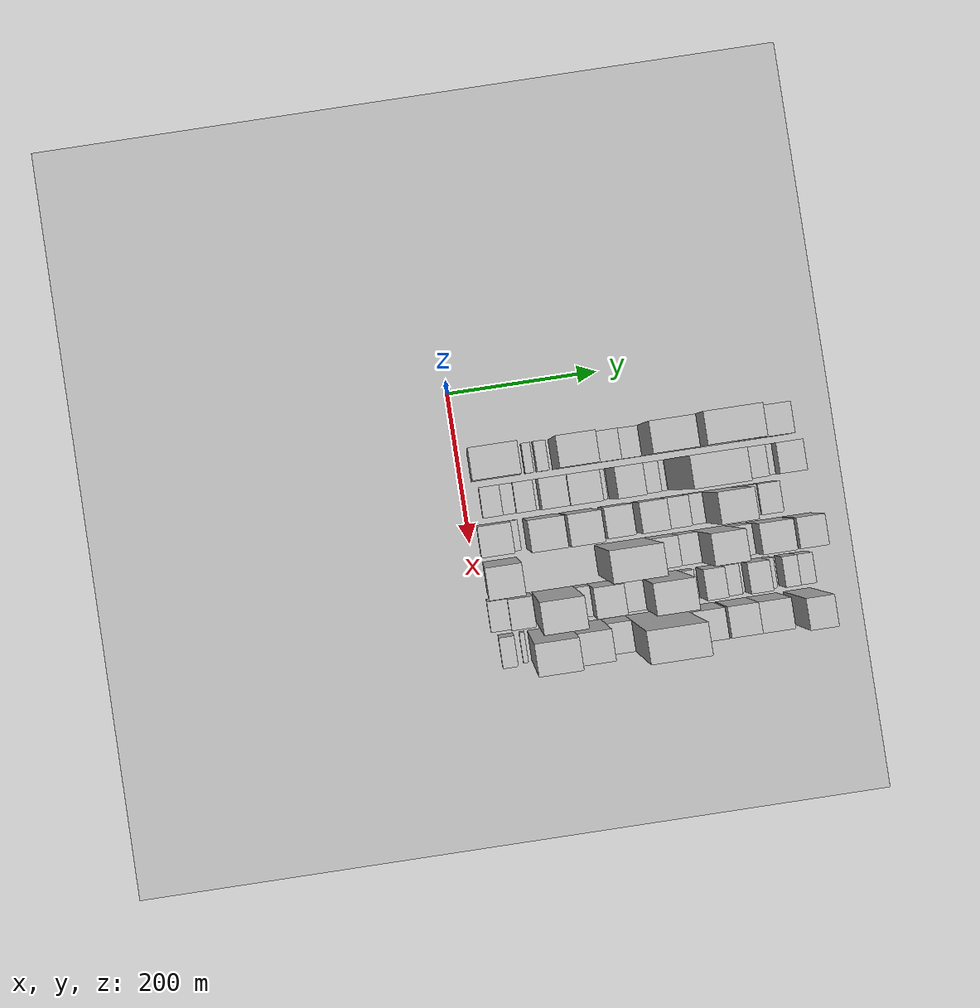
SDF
<sdf version="1.6">
 <world name="default">
  <include><name>ground_plane_1</name><uri>model://HANNAS_ground_plane</uri></include>
  <include>
   <name>ground_plane_2</name>
   <uri>model://HANNAS_ground_plane</uri>
   <pose>100 0 0  0 0 0</pose>
  </include>
  <model name="building_22">
   <static>1</static>
   <pose>100.0000 43.3936 0 0.000000 0.000000 0.000000</pose>
   <link name="link">
    <pose>0 0 82.50 0 0 0</pose>
    <collision name="collision"><geometry><box><size>40.0000 59.7189 165.0000</size></box></geometry></collision>
    <visual name="visual">
     <cast_shadows>0</cast_shadows>
     <geometry><box><size>40.0000 59.7189 165.0000</size></box></geometry>
     <material>
      <script>
       <uri>model://HANNAS_wall/materials/scripts</uri>
       <uri>model://HANNAS_wall/materials/textures</uri>
       <name>vrc/HANNAS_wall</name>
      </script>
     </material>
    </visual>
   </link>
  </model>
  <model name="building_23">
   <static>1</static>
   <pose>100.0000 76.6870 0 0.000000 0.000000 0.000000</pose>
   <link name="link">
    <pose>0 0 7.50 0 0 0</pose>
    <collision name="collision"><geometry><box><size>40.0000 6.8679 15.0000</size></box></geometry></collision>
    <visual name="visual">
     <cast_shadows>0</cast_shadows>
     <geometry><box><size>40.0000 6.8679 15.0000</size></box></geometry>
     <material>
      <script>
       <uri>model://HANNAS_wall/materials/scripts</uri>
       <uri>model://HANNAS_wall/materials/textures</uri>
       <name>vrc/HANNAS_wall</name>
      </script>
     </material>
    </visual>
   </link>
  </model>
  <model name="building_24">
   <static>1</static>
   <pose>100.0000 90.9002 0 0.000000 0.000000 0.000000</pose>
   <link name="link">
    <pose>0 0 12.00 0 0 0</pose>
    <collision name="collision"><geometry><box><size>40.0000 11.5585 24.0000</size></box></geometry></collision>
    <visual name="visual">
     <cast_shadows>0</cast_shadows>
     <geometry><box><size>40.0000 11.5585 24.0000</size></box></geometry>
     <material>
      <script>
       <uri>model://HANNAS_wall/materials/scripts</uri>
       <uri>model://HANNAS_wall/materials/textures</uri>
       <name>vrc/HANNAS_wall</name>
      </script>
     </material>
    </visual>
   </link>
  </model>
  <model name="building_25">
   <static>1</static>
   <pose>100.0000 108.6364 0 0.000000 0.000000 0.000000</pose>
   <link name="link">
    <pose>0 0 15.00 0 0 0</pose>
    <collision name="collision"><geometry><box><size>40.0000 15.9138 30.0000</size></box></geometry></collision>
    <visual name="visual">
     <cast_shadows>0</cast_shadows>
     <geometry><box><size>40.0000 15.9138 30.0000</size></box></geometry>
     <material>
      <script>
       <uri>model://HANNAS_wall/materials/scripts</uri>
       <uri>model://HANNAS_wall/materials/textures</uri>
       <name>vrc/HANNAS_wall</name>
      </script>
     </material>
    </visual>
   </link>
  </model>
  <model name="building_26">
   <static>1</static>
   <pose>100.0000 147.6354 0 0.000000 0.000000 0.000000</pose>
   <link name="link">
    <pose>0 0 63.00 0 0 0</pose>
    <collision name="collision"><geometry><box><size>40.0000 50.0843 126.0000</size></box></geometry></collision>
    <visual name="visual">
     <cast_shadows>0</cast_shadows>
     <geometry><box><size>40.0000 50.0843 126.0000</size></box></geometry>
     <material>
      <script>
       <uri>model://HANNAS_wall/materials/scripts</uri>
       <uri>model://HANNAS_wall/materials/textures</uri>
       <name>vrc/HANNAS_wall</name>
      </script>
     </material>
    </visual>
   </link>
  </model>
  <model name="building_27">
   <static>1</static>
   <pose>100.0000 190.1945 0 0.000000 0.000000 0.000000</pose>
   <link name="link">
    <pose>0 0 31.50 0 0 0</pose>
    <collision name="collision"><geometry><box><size>40.0000 35.0339 63.0000</size></box></geometry></collision>
    <visual name="visual">
     <cast_shadows>0</cast_shadows>
     <geometry><box><size>40.0000 35.0339 63.0000</size></box></geometry>
     <material>
      <script>
       <uri>model://HANNAS_wall/materials/scripts</uri>
       <uri>model://HANNAS_wall/materials/textures</uri>
       <name>vrc/HANNAS_wall</name>
      </script>
     </material>
    </visual>
   </link>
  </model>
  <model name="building_28">
   <static>1</static>
   <pose>100.0000 221.5984 0 0.000000 0.000000 0.000000</pose>
   <link name="link">
    <pose>0 0 24.00 0 0 0</pose>
    <collision name="collision"><geometry><box><size>40.0000 27.7739 48.0000</size></box></geometry></collision>
    <visual name="visual">
     <cast_shadows>0</cast_shadows>
     <geometry><box><size>40.0000 27.7739 48.0000</size></box></geometry>
     <material>
      <script>
       <uri>model://HANNAS_wall/materials/scripts</uri>
       <uri>model://HANNAS_wall/materials/textures</uri>
       <name>vrc/HANNAS_wall</name>
      </script>
     </material>
    </visual>
   </link>
  </model>
  <model name="building_29">
   <static>1</static>
   <pose>100.0000 264.2516 0 0.000000 0.000000 0.000000</pose>
   <link name="link">
    <pose>0 0 73.50 0 0 0</pose>
    <collision name="collision"><geometry><box><size>40.0000 57.5324 147.0000</size></box></geometry></collision>
    <visual name="visual">
     <cast_shadows>0</cast_shadows>
     <geometry><box><size>40.0000 57.5324 147.0000</size></box></geometry>
     <material>
      <script>
       <uri>model://HANNAS_wall/materials/scripts</uri>
       <uri>model://HANNAS_wall/materials/textures</uri>
       <name>vrc/HANNAS_wall</name>
      </script>
     </material>
    </visual>
   </link>
  </model>
  <model name="building_30">
   <static>1</static>
   <pose>100.0000 328.5669 0 0.000000 0.000000 0.000000</pose>
   <link name="link">
    <pose>0 0 97.50 0 0 0</pose>
    <collision name="collision"><geometry><box><size>40.0000 71.0983 195.0000</size></box></geometry></collision>
    <visual name="visual">
     <cast_shadows>0</cast_shadows>
     <geometry><box><size>40.0000 71.0983 195.0000</size></box></geometry>
     <material>
      <script>
       <uri>model://HANNAS_wall/materials/scripts</uri>
       <uri>model://HANNAS_wall/materials/textures</uri>
       <name>vrc/HANNAS_wall</name>
      </script>
     </material>
    </visual>
   </link>
  </model>
  <model name="building_31">
   <static>1</static>
   <pose>100.0000 374.6300 0 0.000000 0.000000 0.000000</pose>
   <link name="link">
    <pose>0 0 19.50 0 0 0</pose>
    <collision name="collision"><geometry><box><size>40.0000 21.0278 39.0000</size></box></geometry></collision>
    <visual name="visual">
     <cast_shadows>0</cast_shadows>
     <geometry><box><size>40.0000 21.0278 39.0000</size></box></geometry>
     <material>
      <script>
       <uri>model://HANNAS_wall/materials/scripts</uri>
       <uri>model://HANNAS_wall/materials/textures</uri>
       <name>vrc/HANNAS_wall</name>
      </script>
     </material>
    </visual>
   </link>
  </model>
  <model name="building_32">
   <static>1</static>
   <pose>100.0000 404.0000 0 0.000000 0.000000 0.000000</pose>
   <link name="link">
    <pose>0 0 48.00 0 0 0</pose>
    <collision name="collision"><geometry><box><size>40.0000 37.7122 96.0000</size></box></geometry></collision>
    <visual name="visual">
     <cast_shadows>0</cast_shadows>
     <geometry><box><size>40.0000 37.7122 96.0000</size></box></geometry>
     <material>
      <script>
       <uri>model://HANNAS_wall/materials/scripts</uri>
       <uri>model://HANNAS_wall/materials/textures</uri>
       <name>vrc/HANNAS_wall</name>
      </script>
     </material>
    </visual>
   </link>
  </model>
  <model name="building_33">
   <static>1</static>
   <pose>100.0000 429.2658 0 0.000000 0.000000 0.000000</pose>
   <link name="link">
    <pose>0 0 13.50 0 0 0</pose>
    <collision name="collision"><geometry><box><size>40.0000 12.8195 27.0000</size></box></geometry></collision>
    <visual name="visual">
     <cast_shadows>0</cast_shadows>
     <geometry><box><size>40.0000 12.8195 27.0000</size></box></geometry>
     <material>
      <script>
       <uri>model://HANNAS_wall/materials/scripts</uri>
       <uri>model://HANNAS_wall/materials/textures</uri>
       <name>vrc/HANNAS_wall</name>
      </script>
     </material>
    </visual>
   </link>
  </model>
  <model name="building_69">
   <static>1</static>
   <pose>149.0000 34.6953 0 0.000000 0.000000 0.000000</pose>
   <link name="link">
    <pose>0 0 22.50 0 0 0</pose>
    <collision name="collision"><geometry><box><size>40.0000 26.3077 45.0000</size></box></geometry></collision>
    <visual name="visual">
     <cast_shadows>0</cast_shadows>
     <geometry><box><size>40.0000 26.3077 45.0000</size></box></geometry>
     <material>
      <script>
       <uri>model://HANNAS_wall/materials/scripts</uri>
       <uri>model://HANNAS_wall/materials/textures</uri>
       <name>vrc/HANNAS_wall</name>
      </script>
     </material>
    </visual>
   </link>
  </model>
  <model name="building_70">
   <static>1</static>
   <pose>149.0000 56.5618 0 0.000000 0.000000 0.000000</pose>
   <link name="link">
    <pose>0 0 15.00 0 0 0</pose>
    <collision name="collision"><geometry><box><size>40.0000 17.4253 30.0000</size></box></geometry></collision>
    <visual name="visual">
     <cast_shadows>0</cast_shadows>
     <geometry><box><size>40.0000 17.4253 30.0000</size></box></geometry>
     <material>
      <script>
       <uri>model://HANNAS_wall/materials/scripts</uri>
       <uri>model://HANNAS_wall/materials/textures</uri>
       <name>vrc/HANNAS_wall</name>
      </script>
     </material>
    </visual>
   </link>
  </model>
  <model name="building_71">
   <static>1</static>
   <pose>149.0000 78.2791 0 0.000000 0.000000 0.000000</pose>
   <link name="link">
    <pose>0 0 22.50 0 0 0</pose>
    <collision name="collision"><geometry><box><size>40.0000 26.0093 45.0000</size></box></geometry></collision>
    <visual name="visual">
     <cast_shadows>0</cast_shadows>
     <geometry><box><size>40.0000 26.0093 45.0000</size></box></geometry>
     <material>
      <script>
       <uri>model://HANNAS_wall/materials/scripts</uri>
       <uri>model://HANNAS_wall/materials/textures</uri>
       <name>vrc/HANNAS_wall</name>
      </script>
     </material>
    </visual>
   </link>
  </model>
  <model name="building_72">
   <static>1</static>
   <pose>149.0000 94.3080 0 0.000000 0.000000 0.000000</pose>
   <link name="link">
    <pose>0 0 7.50 0 0 0</pose>
    <collision name="collision"><geometry><box><size>40.0000 6.0483 15.0000</size></box></geometry></collision>
    <visual name="visual">
     <cast_shadows>0</cast_shadows>
     <geometry><box><size>40.0000 6.0483 15.0000</size></box></geometry>
     <material>
      <script>
       <uri>model://HANNAS_wall/materials/scripts</uri>
       <uri>model://HANNAS_wall/materials/textures</uri>
       <name>vrc/HANNAS_wall</name>
      </script>
     </material>
    </visual>
   </link>
  </model>
  <model name="building_73">
   <static>1</static>
   <pose>149.0000 115.4321 0 0.000000 0.000000 0.000000</pose>
   <link name="link">
    <pose>0 0 33.00 0 0 0</pose>
    <collision name="collision"><geometry><box><size>40.0000 36.2000 66.0000</size></box></geometry></collision>
    <visual name="visual">
     <cast_shadows>0</cast_shadows>
     <geometry><box><size>40.0000 36.2000 66.0000</size></box></geometry>
     <material>
      <script>
       <uri>model://HANNAS_wall/materials/scripts</uri>
       <uri>model://HANNAS_wall/materials/textures</uri>
       <name>vrc/HANNAS_wall</name>
      </script>
     </material>
    </visual>
   </link>
  </model>
  <model name="building_74">
   <static>1</static>
   <pose>149.0000 154.6363 0 0.000000 0.000000 0.000000</pose>
   <link name="link">
    <pose>0 0 37.50 0 0 0</pose>
    <collision name="collision"><geometry><box><size>40.0000 42.2082 75.0000</size></box></geometry></collision>
    <visual name="visual">
     <cast_shadows>0</cast_shadows>
     <geometry><box><size>40.0000 42.2082 75.0000</size></box></geometry>
     <material>
      <script>
       <uri>model://HANNAS_wall/materials/scripts</uri>
       <uri>model://HANNAS_wall/materials/textures</uri>
       <name>vrc/HANNAS_wall</name>
      </script>
     </material>
    </visual>
   </link>
  </model>
  <model name="building_75">
   <static>1</static>
   <pose>149.0000 181.4023 0 0.000000 0.000000 0.000000</pose>
   <link name="link">
    <pose>0 0 12.00 0 0 0</pose>
    <collision name="collision"><geometry><box><size>40.0000 11.3238 24.0000</size></box></geometry></collision>
    <visual name="visual">
     <cast_shadows>0</cast_shadows>
     <geometry><box><size>40.0000 11.3238 24.0000</size></box></geometry>
     <material>
      <script>
       <uri>model://HANNAS_wall/materials/scripts</uri>
       <uri>model://HANNAS_wall/materials/textures</uri>
       <name>vrc/HANNAS_wall</name>
      </script>
     </material>
    </visual>
   </link>
  </model>
  <model name="building_76">
   <static>1</static>
   <pose>149.0000 209.1817 0 0.000000 0.000000 0.000000</pose>
   <link name="link">
    <pose>0 0 51.00 0 0 0</pose>
    <collision name="collision"><geometry><box><size>40.0000 36.2350 102.0000</size></box></geometry></collision>
    <visual name="visual">
     <cast_shadows>0</cast_shadows>
     <geometry><box><size>40.0000 36.2350 102.0000</size></box></geometry>
     <material>
      <script>
       <uri>model://HANNAS_wall/materials/scripts</uri>
       <uri>model://HANNAS_wall/materials/textures</uri>
       <name>vrc/HANNAS_wall</name>
      </script>
     </material>
    </visual>
   </link>
  </model>
  <model name="building_77">
   <static>1</static>
   <pose>149.0000 240.6200 0 0.000000 0.000000 0.000000</pose>
   <link name="link">
    <pose>0 0 25.50 0 0 0</pose>
    <collision name="collision"><geometry><box><size>40.0000 26.6417 51.0000</size></box></geometry></collision>
    <visual name="visual">
     <cast_shadows>0</cast_shadows>
     <geometry><box><size>40.0000 26.6417 51.0000</size></box></geometry>
     <material>
      <script>
       <uri>model://HANNAS_wall/materials/scripts</uri>
       <uri>model://HANNAS_wall/materials/textures</uri>
       <name>vrc/HANNAS_wall</name>
      </script>
     </material>
    </visual>
   </link>
  </model>
  <model name="building_78">
   <static>1</static>
   <pose>149.0000 259.4497 0 0.000000 0.000000 0.000000</pose>
   <link name="link">
    <pose>0 0 13.50 0 0 0</pose>
    <collision name="collision"><geometry><box><size>40.0000 11.0177 27.0000</size></box></geometry></collision>
    <visual name="visual">
     <cast_shadows>0</cast_shadows>
     <geometry><box><size>40.0000 11.0177 27.0000</size></box></geometry>
     <material>
      <script>
       <uri>model://HANNAS_wall/materials/scripts</uri>
       <uri>model://HANNAS_wall/materials/textures</uri>
       <name>vrc/HANNAS_wall</name>
      </script>
     </material>
    </visual>
   </link>
  </model>
  <model name="building_79">
   <static>1</static>
   <pose>149.0000 304.3574 0 0.000000 0.000000 0.000000</pose>
   <link name="link">
    <pose>0 0 96.00 0 0 0</pose>
    <collision name="collision"><geometry><box><size>40.0000 68.7976 192.0000</size></box></geometry></collision>
    <visual name="visual">
     <cast_shadows>0</cast_shadows>
     <geometry><box><size>40.0000 68.7976 192.0000</size></box></geometry>
     <material>
      <script>
       <uri>model://HANNAS_wall/materials/scripts</uri>
       <uri>model://HANNAS_wall/materials/textures</uri>
       <name>vrc/HANNAS_wall</name>
      </script>
     </material>
    </visual>
   </link>
  </model>
  <model name="building_80">
   <static>1</static>
   <pose>149.0000 362.0281 0 0.000000 0.000000 0.000000</pose>
   <link name="link">
    <pose>0 0 43.50 0 0 0</pose>
    <collision name="collision"><geometry><box><size>40.0000 46.5438 87.0000</size></box></geometry></collision>
    <visual name="visual">
     <cast_shadows>0</cast_shadows>
     <geometry><box><size>40.0000 46.5438 87.0000</size></box></geometry>
     <material>
      <script>
       <uri>model://HANNAS_wall/materials/scripts</uri>
       <uri>model://HANNAS_wall/materials/textures</uri>
       <name>vrc/HANNAS_wall</name>
      </script>
     </material>
    </visual>
   </link>
  </model>
  <model name="building_81">
   <static>1</static>
   <pose>149.0000 395.4197 0 0.000000 0.000000 0.000000</pose>
   <link name="link">
    <pose>0 0 18.00 0 0 0</pose>
    <collision name="collision"><geometry><box><size>40.0000 20.2394 36.0000</size></box></geometry></collision>
    <visual name="visual">
     <cast_shadows>0</cast_shadows>
     <geometry><box><size>40.0000 20.2394 36.0000</size></box></geometry>
     <material>
      <script>
       <uri>model://HANNAS_wall/materials/scripts</uri>
       <uri>model://HANNAS_wall/materials/textures</uri>
       <name>vrc/HANNAS_wall</name>
      </script>
     </material>
    </visual>
   </link>
  </model>
  <model name="building_82">
   <static>1</static>
   <pose>149.0000 423.2424 0 0.000000 0.000000 0.000000</pose>
   <link name="link">
    <pose>0 0 30.00 0 0 0</pose>
    <collision name="collision"><geometry><box><size>40.0000 35.4060 60.0000</size></box></geometry></collision>
    <visual name="visual">
     <cast_shadows>0</cast_shadows>
     <geometry><box><size>40.0000 35.4060 60.0000</size></box></geometry>
     <material>
      <script>
       <uri>model://HANNAS_wall/materials/scripts</uri>
       <uri>model://HANNAS_wall/materials/textures</uri>
       <name>vrc/HANNAS_wall</name>
      </script>
     </material>
    </visual>
   </link>
  </model>
  <model name="building_124">
   <static>1</static>
   <pose>198.0000 33.1435 0 0.000000 0.000000 0.000000</pose>
   <link name="link">
    <pose>0 0 36.00 0 0 0</pose>
    <collision name="collision"><geometry><box><size>40.0000 42.9737 72.0000</size></box></geometry></collision>
    <visual name="visual">
     <cast_shadows>0</cast_shadows>
     <geometry><box><size>40.0000 42.9737 72.0000</size></box></geometry>
     <material>
      <script>
       <uri>model://HANNAS_wall/materials/scripts</uri>
       <uri>model://HANNAS_wall/materials/textures</uri>
       <name>vrc/HANNAS_wall</name>
      </script>
     </material>
    </visual>
   </link>
  </model>
  <model name="building_125">
   <static>1</static>
   <pose>198.0000 59.8901 0 0.000000 0.000000 0.000000</pose>
   <link name="link">
    <pose>0 0 12.00 0 0 0</pose>
    <collision name="collision"><geometry><box><size>40.0000 10.5196 24.0000</size></box></geometry></collision>
    <visual name="visual">
     <cast_shadows>0</cast_shadows>
     <geometry><box><size>40.0000 10.5196 24.0000</size></box></geometry>
     <material>
      <script>
       <uri>model://HANNAS_wall/materials/scripts</uri>
       <uri>model://HANNAS_wall/materials/textures</uri>
       <name>vrc/HANNAS_wall</name>
      </script>
     </material>
    </visual>
   </link>
  </model>
  <model name="building_126">
   <static>1</static>
   <pose>198.0000 96.0123 0 0.000000 0.000000 0.000000</pose>
   <link name="link">
    <pose>0 0 63.00 0 0 0</pose>
    <collision name="collision"><geometry><box><size>40.0000 45.7249 126.0000</size></box></geometry></collision>
    <visual name="visual">
     <cast_shadows>0</cast_shadows>
     <geometry><box><size>40.0000 45.7249 126.0000</size></box></geometry>
     <material>
      <script>
       <uri>model://HANNAS_wall/materials/scripts</uri>
       <uri>model://HANNAS_wall/materials/textures</uri>
       <name>vrc/HANNAS_wall</name>
      </script>
     </material>
    </visual>
   </link>
  </model>
  <model name="building_127">
   <static>1</static>
   <pose>198.0000 143.0758 0 0.000000 0.000000 0.000000</pose>
   <link name="link">
    <pose>0 0 66.00 0 0 0</pose>
    <collision name="collision"><geometry><box><size>40.0000 42.4020 132.0000</size></box></geometry></collision>
    <visual name="visual">
     <cast_shadows>0</cast_shadows>
     <geometry><box><size>40.0000 42.4020 132.0000</size></box></geometry>
     <material>
      <script>
       <uri>model://HANNAS_wall/materials/scripts</uri>
       <uri>model://HANNAS_wall/materials/textures</uri>
       <name>vrc/HANNAS_wall</name>
      </script>
     </material>
    </visual>
   </link>
  </model>
  <model name="building_128">
   <static>1</static>
   <pose>198.0000 192.6406 0 0.000000 0.000000 0.000000</pose>
   <link name="link">
    <pose>0 0 34.50 0 0 0</pose>
    <collision name="collision"><geometry><box><size>40.0000 36.7275 69.0000</size></box></geometry></collision>
    <visual name="visual">
     <cast_shadows>0</cast_shadows>
     <geometry><box><size>40.0000 36.7275 69.0000</size></box></geometry>
     <material>
      <script>
       <uri>model://HANNAS_wall/materials/scripts</uri>
       <uri>model://HANNAS_wall/materials/textures</uri>
       <name>vrc/HANNAS_wall</name>
      </script>
     </material>
    </visual>
   </link>
  </model>
  <model name="building_129">
   <static>1</static>
   <pose>198.0000 237.0880 0 0.000000 0.000000 0.000000</pose>
   <link name="link">
    <pose>0 0 36.00 0 0 0</pose>
    <collision name="collision"><geometry><box><size>40.0000 36.1674 72.0000</size></box></geometry></collision>
    <visual name="visual">
     <cast_shadows>0</cast_shadows>
     <geometry><box><size>40.0000 36.1674 72.0000</size></box></geometry>
     <material>
      <script>
       <uri>model://HANNAS_wall/materials/scripts</uri>
       <uri>model://HANNAS_wall/materials/textures</uri>
       <name>vrc/HANNAS_wall</name>
      </script>
     </material>
    </visual>
   </link>
  </model>
  <model name="building_130">
   <static>1</static>
   <pose>198.0000 270.2489 0 0.000000 0.000000 0.000000</pose>
   <link name="link">
    <pose>0 0 28.50 0 0 0</pose>
    <collision name="collision"><geometry><box><size>40.0000 30.1544 57.0000</size></box></geometry></collision>
    <visual name="visual">
     <cast_shadows>0</cast_shadows>
     <geometry><box><size>40.0000 30.1544 57.0000</size></box></geometry>
     <material>
      <script>
       <uri>model://HANNAS_wall/materials/scripts</uri>
       <uri>model://HANNAS_wall/materials/textures</uri>
       <name>vrc/HANNAS_wall</name>
      </script>
     </material>
    </visual>
   </link>
  </model>
  <model name="building_131">
   <static>1</static>
   <pose>198.0000 295.8630 0 0.000000 0.000000 0.000000</pose>
   <link name="link">
    <pose>0 0 19.50 0 0 0</pose>
    <collision name="collision"><geometry><box><size>40.0000 21.0737 39.0000</size></box></geometry></collision>
    <visual name="visual">
     <cast_shadows>0</cast_shadows>
     <geometry><box><size>40.0000 21.0737 39.0000</size></box></geometry>
     <material>
      <script>
       <uri>model://HANNAS_wall/materials/scripts</uri>
       <uri>model://HANNAS_wall/materials/textures</uri>
       <name>vrc/HANNAS_wall</name>
      </script>
     </material>
    </visual>
   </link>
  </model>
  <model name="building_132">
   <static>1</static>
   <pose>198.0000 329.4853 0 0.000000 0.000000 0.000000</pose>
   <link name="link">
    <pose>0 0 69.00 0 0 0</pose>
    <collision name="collision"><geometry><box><size>40.0000 46.1709 138.0000</size></box></geometry></collision>
    <visual name="visual">
     <cast_shadows>0</cast_shadows>
     <geometry><box><size>40.0000 46.1709 138.0000</size></box></geometry>
     <material>
      <script>
       <uri>model://HANNAS_wall/materials/scripts</uri>
       <uri>model://HANNAS_wall/materials/textures</uri>
       <name>vrc/HANNAS_wall</name>
      </script>
     </material>
    </visual>
   </link>
  </model>
  <model name="building_133">
   <static>1</static>
   <pose>198.0000 364.4272 0 0.000000 0.000000 0.000000</pose>
   <link name="link">
    <pose>0 0 22.50 0 0 0</pose>
    <collision name="collision"><geometry><box><size>40.0000 23.7129 45.0000</size></box></geometry></collision>
    <visual name="visual">
     <cast_shadows>0</cast_shadows>
     <geometry><box><size>40.0000 23.7129 45.0000</size></box></geometry>
     <material>
      <script>
       <uri>model://HANNAS_wall/materials/scripts</uri>
       <uri>model://HANNAS_wall/materials/textures</uri>
       <name>vrc/HANNAS_wall</name>
      </script>
     </material>
    </visual>
   </link>
  </model>
  <model name="building_134">
   <static>1</static>
   <pose>198.0000 390.7256 0 0.000000 0.000000 0.000000</pose>
   <link name="link">
    <pose>0 0 25.50 0 0 0</pose>
    <collision name="collision"><geometry><box><size>40.0000 28.8837 51.0000</size></box></geometry></collision>
    <visual name="visual">
     <cast_shadows>0</cast_shadows>
     <geometry><box><size>40.0000 28.8837 51.0000</size></box></geometry>
     <material>
      <script>
       <uri>model://HANNAS_wall/materials/scripts</uri>
       <uri>model://HANNAS_wall/materials/textures</uri>
       <name>vrc/HANNAS_wall</name>
      </script>
     </material>
    </visual>
   </link>
  </model>
  <model name="building_168">
   <static>1</static>
   <pose>247.0000 35.2082 0 0.000000 0.000000 0.000000</pose>
   <link name="link">
    <pose>0 0 70.50 0 0 0</pose>
    <collision name="collision"><geometry><box><size>40.0000 45.2561 141.0000</size></box></geometry></collision>
    <visual name="visual">
     <cast_shadows>0</cast_shadows>
     <geometry><box><size>40.0000 45.2561 141.0000</size></box></geometry>
     <material>
      <script>
       <uri>model://HANNAS_wall/materials/scripts</uri>
       <uri>model://HANNAS_wall/materials/textures</uri>
       <name>vrc/HANNAS_wall</name>
      </script>
     </material>
    </visual>
   </link>
  </model>
  <model name="building_169">
   <static>1</static>
   <pose>247.0000 194.8895 0 0.000000 0.000000 0.000000</pose>
   <link name="link">
    <pose>0 0 84.00 0 0 0</pose>
    <collision name="collision"><geometry><box><size>40.0000 66.0355 168.0000</size></box></geometry></collision>
    <visual name="visual">
     <cast_shadows>0</cast_shadows>
     <geometry><box><size>40.0000 66.0355 168.0000</size></box></geometry>
     <material>
      <script>
       <uri>model://HANNAS_wall/materials/scripts</uri>
       <uri>model://HANNAS_wall/materials/textures</uri>
       <name>vrc/HANNAS_wall</name>
      </script>
     </material>
    </visual>
   </link>
  </model>
  <model name="building_170">
   <static>1</static>
   <pose>247.0000 245.8901 0 0.000000 0.000000 0.000000</pose>
   <link name="link">
    <pose>0 0 30.00 0 0 0</pose>
    <collision name="collision"><geometry><box><size>40.0000 35.9656 60.0000</size></box></geometry></collision>
    <visual name="visual">
     <cast_shadows>0</cast_shadows>
     <geometry><box><size>40.0000 35.9656 60.0000</size></box></geometry>
     <material>
      <script>
       <uri>model://HANNAS_wall/materials/scripts</uri>
       <uri>model://HANNAS_wall/materials/textures</uri>
       <name>vrc/HANNAS_wall</name>
      </script>
     </material>
    </visual>
   </link>
  </model>
  <model name="building_171">
   <static>1</static>
   <pose>247.0000 277.6153 0 0.000000 0.000000 0.000000</pose>
   <link name="link">
    <pose>0 0 25.50 0 0 0</pose>
    <collision name="collision"><geometry><box><size>40.0000 27.4848 51.0000</size></box></geometry></collision>
    <visual name="visual">
     <cast_shadows>0</cast_shadows>
     <geometry><box><size>40.0000 27.4848 51.0000</size></box></geometry>
     <material>
      <script>
       <uri>model://HANNAS_wall/materials/scripts</uri>
       <uri>model://HANNAS_wall/materials/textures</uri>
       <name>vrc/HANNAS_wall</name>
      </script>
     </material>
    </visual>
   </link>
  </model>
  <model name="building_172">
   <static>1</static>
   <pose>247.0000 313.2249 0 0.000000 0.000000 0.000000</pose>
   <link name="link">
    <pose>0 0 67.50 0 0 0</pose>
    <collision name="collision"><geometry><box><size>40.0000 43.7345 135.0000</size></box></geometry></collision>
    <visual name="visual">
     <cast_shadows>0</cast_shadows>
     <geometry><box><size>40.0000 43.7345 135.0000</size></box></geometry>
     <material>
      <script>
       <uri>model://HANNAS_wall/materials/scripts</uri>
       <uri>model://HANNAS_wall/materials/textures</uri>
       <name>vrc/HANNAS_wall</name>
      </script>
     </material>
    </visual>
   </link>
  </model>
  <model name="building_173">
   <static>1</static>
   <pose>247.0000 348.4745 0 0.000000 0.000000 0.000000</pose>
   <link name="link">
    <pose>0 0 24.00 0 0 0</pose>
    <collision name="collision"><geometry><box><size>40.0000 26.7648 48.0000</size></box></geometry></collision>
    <visual name="visual">
     <cast_shadows>0</cast_shadows>
     <geometry><box><size>40.0000 26.7648 48.0000</size></box></geometry>
     <material>
      <script>
       <uri>model://HANNAS_wall/materials/scripts</uri>
       <uri>model://HANNAS_wall/materials/textures</uri>
       <name>vrc/HANNAS_wall</name>
      </script>
     </material>
    </visual>
   </link>
  </model>
  <model name="building_174">
   <static>1</static>
   <pose>247.0000 387.0696 0 0.000000 0.000000 0.000000</pose>
   <link name="link">
    <pose>0 0 37.50 0 0 0</pose>
    <collision name="collision"><geometry><box><size>40.0000 44.4254 75.0000</size></box></geometry></collision>
    <visual name="visual">
     <cast_shadows>0</cast_shadows>
     <geometry><box><size>40.0000 44.4254 75.0000</size></box></geometry>
     <material>
      <script>
       <uri>model://HANNAS_wall/materials/scripts</uri>
       <uri>model://HANNAS_wall/materials/textures</uri>
       <name>vrc/HANNAS_wall</name>
      </script>
     </material>
    </visual>
   </link>
  </model>
  <model name="building_175">
   <static>1</static>
   <pose>247.0000 432.8101 0 0.000000 0.000000 0.000000</pose>
   <link name="link">
    <pose>0 0 34.50 0 0 0</pose>
    <collision name="collision"><geometry><box><size>40.0000 37.0557 69.0000</size></box></geometry></collision>
    <visual name="visual">
     <cast_shadows>0</cast_shadows>
     <geometry><box><size>40.0000 37.0557 69.0000</size></box></geometry>
     <material>
      <script>
       <uri>model://HANNAS_wall/materials/scripts</uri>
       <uri>model://HANNAS_wall/materials/textures</uri>
       <name>vrc/HANNAS_wall</name>
      </script>
     </material>
    </visual>
   </link>
  </model>
  <model name="building_211">
   <static>1</static>
   <pose>296.0000 23.0819 0 0.000000 0.000000 0.000000</pose>
   <link name="link">
    <pose>0 0 22.50 0 0 0</pose>
    <collision name="collision"><geometry><box><size>40.0000 26.4481 45.0000</size></box></geometry></collision>
    <visual name="visual">
     <cast_shadows>0</cast_shadows>
     <geometry><box><size>40.0000 26.4481 45.0000</size></box></geometry>
     <material>
      <script>
       <uri>model://HANNAS_wall/materials/scripts</uri>
       <uri>model://HANNAS_wall/materials/textures</uri>
       <name>vrc/HANNAS_wall</name>
      </script>
     </material>
    </visual>
   </link>
  </model>
  <model name="building_212">
   <static>1</static>
   <pose>296.0000 52.1793 0 0.000000 0.000000 0.000000</pose>
   <link name="link">
    <pose>0 0 30.00 0 0 0</pose>
    <collision name="collision"><geometry><box><size>40.0000 31.7467 60.0000</size></box></geometry></collision>
    <visual name="visual">
     <cast_shadows>0</cast_shadows>
     <geometry><box><size>40.0000 31.7467 60.0000</size></box></geometry>
     <material>
      <script>
       <uri>model://HANNAS_wall/materials/scripts</uri>
       <uri>model://HANNAS_wall/materials/textures</uri>
       <name>vrc/HANNAS_wall</name>
      </script>
     </material>
    </visual>
   </link>
  </model>
  <model name="building_213">
   <static>1</static>
   <pose>296.0000 98.3524 0 0.000000 0.000000 0.000000</pose>
   <link name="link">
    <pose>0 0 81.00 0 0 0</pose>
    <collision name="collision"><geometry><box><size>40.0000 54.5994 162.0000</size></box></geometry></collision>
    <visual name="visual">
     <cast_shadows>0</cast_shadows>
     <geometry><box><size>40.0000 54.5994 162.0000</size></box></geometry>
     <material>
      <script>
       <uri>model://HANNAS_wall/materials/scripts</uri>
       <uri>model://HANNAS_wall/materials/textures</uri>
       <name>vrc/HANNAS_wall</name>
      </script>
     </material>
    </visual>
   </link>
  </model>
  <model name="building_214">
   <static>1</static>
   <pose>296.0000 135.2148 0 0.000000 0.000000 0.000000</pose>
   <link name="link">
    <pose>0 0 16.50 0 0 0</pose>
    <collision name="collision"><geometry><box><size>40.0000 19.1254 33.0000</size></box></geometry></collision>
    <visual name="visual">
     <cast_shadows>0</cast_shadows>
     <geometry><box><size>40.0000 19.1254 33.0000</size></box></geometry>
     <material>
      <script>
       <uri>model://HANNAS_wall/materials/scripts</uri>
       <uri>model://HANNAS_wall/materials/textures</uri>
       <name>vrc/HANNAS_wall</name>
      </script>
     </material>
    </visual>
   </link>
  </model>
  <model name="building_215">
   <static>1</static>
   <pose>296.0000 164.5422 0 0.000000 0.000000 0.000000</pose>
   <link name="link">
    <pose>0 0 39.00 0 0 0</pose>
    <collision name="collision"><geometry><box><size>40.0000 39.5294 78.0000</size></box></geometry></collision>
    <visual name="visual">
     <cast_shadows>0</cast_shadows>
     <geometry><box><size>40.0000 39.5294 78.0000</size></box></geometry>
     <material>
      <script>
       <uri>model://HANNAS_wall/materials/scripts</uri>
       <uri>model://HANNAS_wall/materials/textures</uri>
       <name>vrc/HANNAS_wall</name>
      </script>
     </material>
    </visual>
   </link>
  </model>
  <model name="building_216">
   <static>1</static>
   <pose>296.0000 198.0750 0 0.000000 0.000000 0.000000</pose>
   <link name="link">
    <pose>0 0 25.50 0 0 0</pose>
    <collision name="collision"><geometry><box><size>40.0000 27.5362 51.0000</size></box></geometry></collision>
    <visual name="visual">
     <cast_shadows>0</cast_shadows>
     <geometry><box><size>40.0000 27.5362 51.0000</size></box></geometry>
     <material>
      <script>
       <uri>model://HANNAS_wall/materials/scripts</uri>
       <uri>model://HANNAS_wall/materials/textures</uri>
       <name>vrc/HANNAS_wall</name>
      </script>
     </material>
    </visual>
   </link>
  </model>
  <model name="building_217">
   <static>1</static>
   <pose>296.0000 238.3520 0 0.000000 0.000000 0.000000</pose>
   <link name="link">
    <pose>0 0 69.00 0 0 0</pose>
    <collision name="collision"><geometry><box><size>40.0000 53.0177 138.0000</size></box></geometry></collision>
    <visual name="visual">
     <cast_shadows>0</cast_shadows>
     <geometry><box><size>40.0000 53.0177 138.0000</size></box></geometry>
     <material>
      <script>
       <uri>model://HANNAS_wall/materials/scripts</uri>
       <uri>model://HANNAS_wall/materials/textures</uri>
       <name>vrc/HANNAS_wall</name>
      </script>
     </material>
    </visual>
   </link>
  </model>
  <model name="building_218">
   <static>1</static>
   <pose>296.0000 273.4651 0 0.000000 0.000000 0.000000</pose>
   <link name="link">
    <pose>0 0 15.00 0 0 0</pose>
    <collision name="collision"><geometry><box><size>40.0000 17.2085 30.0000</size></box></geometry></collision>
    <visual name="visual">
     <cast_shadows>0</cast_shadows>
     <geometry><box><size>40.0000 17.2085 30.0000</size></box></geometry>
     <material>
      <script>
       <uri>model://HANNAS_wall/materials/scripts</uri>
       <uri>model://HANNAS_wall/materials/textures</uri>
       <name>vrc/HANNAS_wall</name>
      </script>
     </material>
    </visual>
   </link>
  </model>
  <model name="building_219">
   <static>1</static>
   <pose>296.0000 304.0338 0 0.000000 0.000000 0.000000</pose>
   <link name="link">
    <pose>0 0 27.00 0 0 0</pose>
    <collision name="collision"><geometry><box><size>40.0000 27.9289 54.0000</size></box></geometry></collision>
    <visual name="visual">
     <cast_shadows>0</cast_shadows>
     <geometry><box><size>40.0000 27.9289 54.0000</size></box></geometry>
     <material>
      <script>
       <uri>model://HANNAS_wall/materials/scripts</uri>
       <uri>model://HANNAS_wall/materials/textures</uri>
       <name>vrc/HANNAS_wall</name>
      </script>
     </material>
    </visual>
   </link>
  </model>
  <model name="building_220">
   <static>1</static>
   <pose>296.0000 328.6127 0 0.000000 0.000000 0.000000</pose>
   <link name="link">
    <pose>0 0 19.50 0 0 0</pose>
    <collision name="collision"><geometry><box><size>40.0000 21.2289 39.0000</size></box></geometry></collision>
    <visual name="visual">
     <cast_shadows>0</cast_shadows>
     <geometry><box><size>40.0000 21.2289 39.0000</size></box></geometry>
     <material>
      <script>
       <uri>model://HANNAS_wall/materials/scripts</uri>
       <uri>model://HANNAS_wall/materials/textures</uri>
       <name>vrc/HANNAS_wall</name>
      </script>
     </material>
    </visual>
   </link>
  </model>
  <model name="building_221">
   <static>1</static>
   <pose>296.0000 343.1047 0 0.000000 0.000000 0.000000</pose>
   <link name="link">
    <pose>0 0 9.00 0 0 0</pose>
    <collision name="collision"><geometry><box><size>40.0000 7.7553 18.0000</size></box></geometry></collision>
    <visual name="visual">
     <cast_shadows>0</cast_shadows>
     <geometry><box><size>40.0000 7.7553 18.0000</size></box></geometry>
     <material>
      <script>
       <uri>model://HANNAS_wall/materials/scripts</uri>
       <uri>model://HANNAS_wall/materials/textures</uri>
       <name>vrc/HANNAS_wall</name>
      </script>
     </material>
    </visual>
   </link>
  </model>
  <model name="building_222">
   <static>1</static>
   <pose>296.0000 361.5154 0 0.000000 0.000000 0.000000</pose>
   <link name="link">
    <pose>0 0 27.00 0 0 0</pose>
    <collision name="collision"><geometry><box><size>40.0000 29.0660 54.0000</size></box></geometry></collision>
    <visual name="visual">
     <cast_shadows>0</cast_shadows>
     <geometry><box><size>40.0000 29.0660 54.0000</size></box></geometry>
     <material>
      <script>
       <uri>model://HANNAS_wall/materials/scripts</uri>
       <uri>model://HANNAS_wall/materials/textures</uri>
       <name>vrc/HANNAS_wall</name>
      </script>
     </material>
    </visual>
   </link>
  </model>
  <model name="building_223">
   <static>1</static>
   <pose>296.0000 381.8650 0 0.000000 0.000000 0.000000</pose>
   <link name="link">
    <pose>0 0 13.50 0 0 0</pose>
    <collision name="collision"><geometry><box><size>40.0000 11.6331 27.0000</size></box></geometry></collision>
    <visual name="visual">
     <cast_shadows>0</cast_shadows>
     <geometry><box><size>40.0000 11.6331 27.0000</size></box></geometry>
     <material>
      <script>
       <uri>model://HANNAS_wall/materials/scripts</uri>
       <uri>model://HANNAS_wall/materials/textures</uri>
       <name>vrc/HANNAS_wall</name>
      </script>
     </material>
    </visual>
   </link>
  </model>
  <model name="building_224">
   <static>1</static>
   <pose>296.0000 405.6681 0 0.000000 0.000000 0.000000</pose>
   <link name="link">
    <pose>0 0 19.50 0 0 0</pose>
    <collision name="collision"><geometry><box><size>40.0000 19.9731 39.0000</size></box></geometry></collision>
    <visual name="visual">
     <cast_shadows>0</cast_shadows>
     <geometry><box><size>40.0000 19.9731 39.0000</size></box></geometry>
     <material>
      <script>
       <uri>model://HANNAS_wall/materials/scripts</uri>
       <uri>model://HANNAS_wall/materials/textures</uri>
       <name>vrc/HANNAS_wall</name>
      </script>
     </material>
    </visual>
   </link>
  </model>
  <model name="building_225">
   <static>1</static>
   <pose>296.0000 426.1476 0 0.000000 0.000000 0.000000</pose>
   <link name="link">
    <pose>0 0 18.00 0 0 0</pose>
    <collision name="collision"><geometry><box><size>40.0000 20.9860 36.0000</size></box></geometry></collision>
    <visual name="visual">
     <cast_shadows>0</cast_shadows>
     <geometry><box><size>40.0000 20.9860 36.0000</size></box></geometry>
     <material>
      <script>
       <uri>model://HANNAS_wall/materials/scripts</uri>
       <uri>model://HANNAS_wall/materials/textures</uri>
       <name>vrc/HANNAS_wall</name>
      </script>
     </material>
    </visual>
   </link>
  </model>
  <model name="building_263">
   <static>1</static>
   <pose>345.0000 28.1547 0 0.000000 0.000000 0.000000</pose>
   <link name="link">
    <pose>0 0 19.50 0 0 0</pose>
    <collision name="collision"><geometry><box><size>40.0000 19.9760 39.0000</size></box></geometry></collision>
    <visual name="visual">
     <cast_shadows>0</cast_shadows>
     <geometry><box><size>40.0000 19.9760 39.0000</size></box></geometry>
     <material>
      <script>
       <uri>model://HANNAS_wall/materials/scripts</uri>
       <uri>model://HANNAS_wall/materials/textures</uri>
       <name>vrc/HANNAS_wall</name>
      </script>
     </material>
    </visual>
   </link>
  </model>
  <model name="building_264">
   <static>1</static>
   <pose>345.0000 49.3933 0 0.000000 0.000000 0.000000</pose>
   <link name="link">
    <pose>0 0 7.50 0 0 0</pose>
    <collision name="collision"><geometry><box><size>40.0000 6.5011 15.0000</size></box></geometry></collision>
    <visual name="visual">
     <cast_shadows>0</cast_shadows>
     <geometry><box><size>40.0000 6.5011 15.0000</size></box></geometry>
     <material>
      <script>
       <uri>model://HANNAS_wall/materials/scripts</uri>
       <uri>model://HANNAS_wall/materials/textures</uri>
       <name>vrc/HANNAS_wall</name>
      </script>
     </material>
    </visual>
   </link>
  </model>
  <model name="building_265">
   <static>1</static>
   <pose>345.0000 85.0292 0 0.000000 0.000000 0.000000</pose>
   <link name="link">
    <pose>0 0 78.00 0 0 0</pose>
    <collision name="collision"><geometry><box><size>40.0000 54.7708 156.0000</size></box></geometry></collision>
    <visual name="visual">
     <cast_shadows>0</cast_shadows>
     <geometry><box><size>40.0000 54.7708 156.0000</size></box></geometry>
     <material>
      <script>
       <uri>model://HANNAS_wall/materials/scripts</uri>
       <uri>model://HANNAS_wall/materials/textures</uri>
       <name>vrc/HANNAS_wall</name>
      </script>
     </material>
    </visual>
   </link>
  </model>
  <model name="building_266">
   <static>1</static>
   <pose>345.0000 134.2586 0 0.000000 0.000000 0.000000</pose>
   <link name="link">
    <pose>0 0 60.00 0 0 0</pose>
    <collision name="collision"><geometry><box><size>40.0000 43.6879 120.0000</size></box></geometry></collision>
    <visual name="visual">
     <cast_shadows>0</cast_shadows>
     <geometry><box><size>40.0000 43.6879 120.0000</size></box></geometry>
     <material>
      <script>
       <uri>model://HANNAS_wall/materials/scripts</uri>
       <uri>model://HANNAS_wall/materials/textures</uri>
       <name>vrc/HANNAS_wall</name>
      </script>
     </material>
    </visual>
   </link>
  </model>
  <model name="building_267">
   <static>1</static>
   <pose>345.0000 172.1790 0 0.000000 0.000000 0.000000</pose>
   <link name="link">
    <pose>0 0 31.50 0 0 0</pose>
    <collision name="collision"><geometry><box><size>40.0000 32.1531 63.0000</size></box></geometry></collision>
    <visual name="visual">
     <cast_shadows>0</cast_shadows>
     <geometry><box><size>40.0000 32.1531 63.0000</size></box></geometry>
     <material>
      <script>
       <uri>model://HANNAS_wall/materials/scripts</uri>
       <uri>model://HANNAS_wall/materials/textures</uri>
       <name>vrc/HANNAS_wall</name>
      </script>
     </material>
    </visual>
   </link>
  </model>
  <model name="building_268">
   <static>1</static>
   <pose>345.0000 225.1261 0 0.000000 0.000000 0.000000</pose>
   <link name="link">
    <pose>0 0 96.00 0 0 0</pose>
    <collision name="collision"><geometry><box><size>40.0000 73.7411 192.0000</size></box></geometry></collision>
    <visual name="visual">
     <cast_shadows>0</cast_shadows>
     <geometry><box><size>40.0000 73.7411 192.0000</size></box></geometry>
     <material>
      <script>
       <uri>model://HANNAS_wall/materials/scripts</uri>
       <uri>model://HANNAS_wall/materials/textures</uri>
       <name>vrc/HANNAS_wall</name>
      </script>
     </material>
    </visual>
   </link>
  </model>
  <model name="building_269">
   <static>1</static>
   <pose>345.0000 284.2217 0 0.000000 0.000000 0.000000</pose>
   <link name="link">
    <pose>0 0 37.50 0 0 0</pose>
    <collision name="collision"><geometry><box><size>40.0000 44.4501 75.0000</size></box></geometry></collision>
    <visual name="visual">
     <cast_shadows>0</cast_shadows>
     <geometry><box><size>40.0000 44.4501 75.0000</size></box></geometry>
     <material>
      <script>
       <uri>model://HANNAS_wall/materials/scripts</uri>
       <uri>model://HANNAS_wall/materials/textures</uri>
       <name>vrc/HANNAS_wall</name>
      </script>
     </material>
    </visual>
   </link>
  </model>
  <model name="building_270">
   <static>1</static>
   <pose>345.0000 329.4460 0 0.000000 0.000000 0.000000</pose>
   <link name="link">
    <pose>0 0 37.50 0 0 0</pose>
    <collision name="collision"><geometry><box><size>40.0000 39.9985 75.0000</size></box></geometry></collision>
    <visual name="visual">
     <cast_shadows>0</cast_shadows>
     <geometry><box><size>40.0000 39.9985 75.0000</size></box></geometry>
     <material>
      <script>
       <uri>model://HANNAS_wall/materials/scripts</uri>
       <uri>model://HANNAS_wall/materials/textures</uri>
       <name>vrc/HANNAS_wall</name>
      </script>
     </material>
    </visual>
   </link>
  </model>
  <model name="building_271">
   <static>1</static>
   <pose>345.0000 370.3005 0 0.000000 0.000000 0.000000</pose>
   <link name="link">
    <pose>0 0 37.50 0 0 0</pose>
    <collision name="collision"><geometry><box><size>40.0000 41.7106 75.0000</size></box></geometry></collision>
    <visual name="visual">
     <cast_shadows>0</cast_shadows>
     <geometry><box><size>40.0000 41.7106 75.0000</size></box></geometry>
     <material>
      <script>
       <uri>model://HANNAS_wall/materials/scripts</uri>
       <uri>model://HANNAS_wall/materials/textures</uri>
       <name>vrc/HANNAS_wall</name>
      </script>
     </material>
    </visual>
   </link>
  </model>
  <model name="building_272">
   <static>1</static>
   <pose>345.0000 418.0531 0 0.000000 0.000000 0.000000</pose>
   <link name="link">
    <pose>0 0 55.50 0 0 0</pose>
    <collision name="collision"><geometry><box><size>40.0000 35.7946 111.0000</size></box></geometry></collision>
    <visual name="visual">
     <cast_shadows>0</cast_shadows>
     <geometry><box><size>40.0000 35.7946 111.0000</size></box></geometry>
     <material>
      <script>
       <uri>model://HANNAS_wall/materials/scripts</uri>
       <uri>model://HANNAS_wall/materials/textures</uri>
       <name>vrc/HANNAS_wall</name>
      </script>
     </material>
    </visual>
   </link>
  </model>
 </world>
</sdf>
